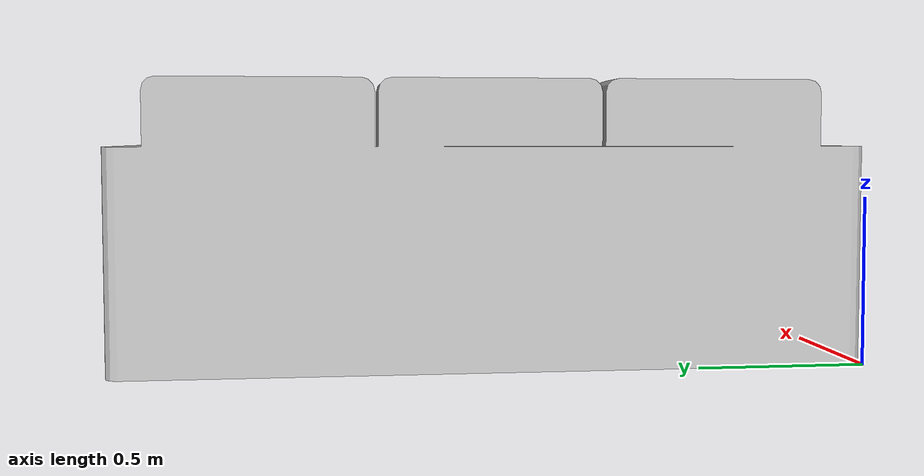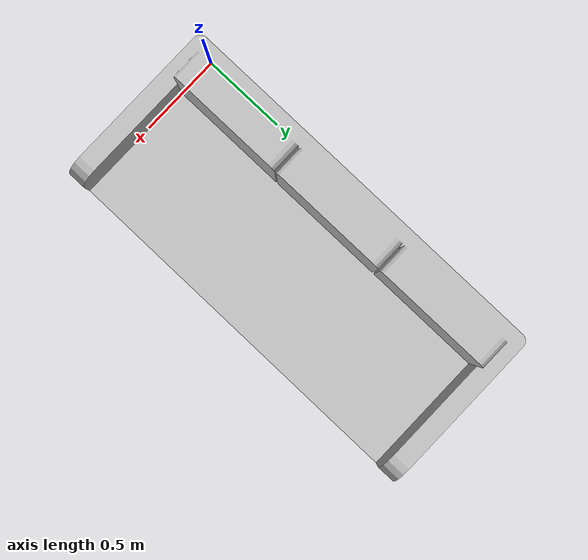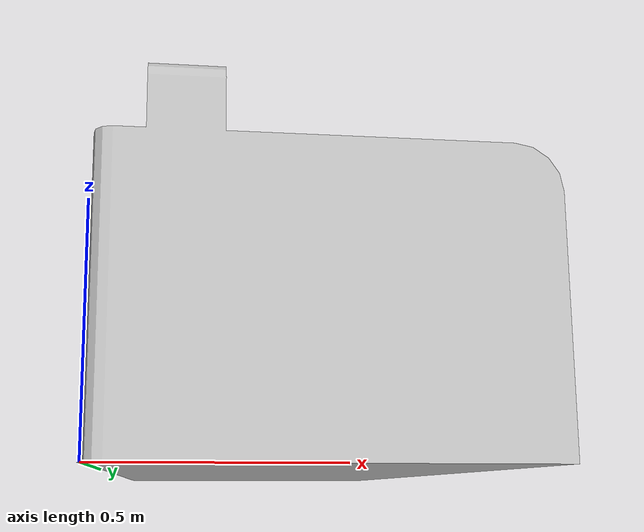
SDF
<sdf version='1.7'>
  <model name='sofa'>
    <link name='base_link'>
      <inertial>
        <pose>0 0 0 0 -0 0</pose>
        <mass>10</mass>
        <inertia>
          <ixx>4.00538</ixx>
          <ixy>0</ixy>
          <ixz>0</ixz>
          <iyy>4.00538</iyy>
          <iyz>0</iyz>
          <izz>0.51076</izz>
        </inertia>
      </inertial>
      <collision name='base_link_fixed_joint_lump__body_link_collision'>
        <pose>0.48 1.1 0.23 0 -0 0</pose>
        <geometry>
          <box>
            <size>0.96 2.2 0.46</size>
          </box>
        </geometry>
      </collision>
      <visual name='base_link_visual'>
        <pose>0 0 0 0 -0 0</pose>
        <geometry>
          <box>
            <size>0.01 0.01 0.001</size>
          </box>
        </geometry>
      </visual>
      <visual name='base_link_fixed_joint_lump__body_link_visual_1'>
        <pose>0 0.003 0 0 -0 0</pose>
        <geometry>
          <mesh>
            <scale>1 1 1</scale>
            <uri>model://sofa/sofa.dae</uri>
          </mesh>
        </geometry>
      </visual>
    </link>
    <frame name='base_to_body' attached_to='base_link'>
      <pose>0 0 0 0 -0 0</pose>
    </frame>
    <frame name='body_link' attached_to='base_to_body'/>
  </model>
</sdf>
